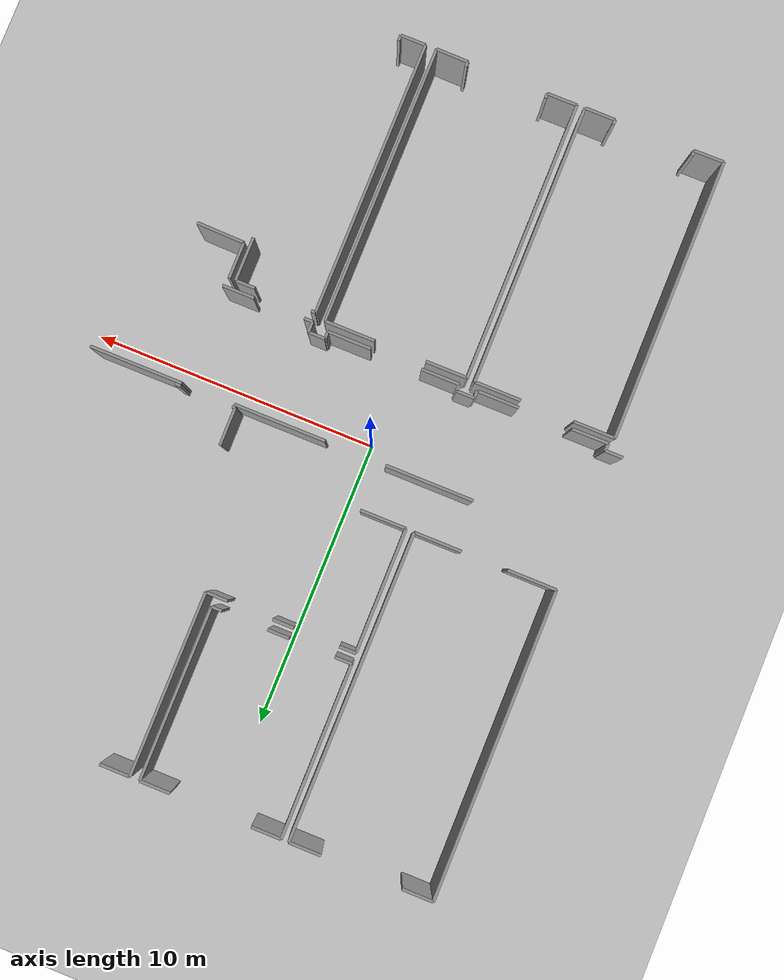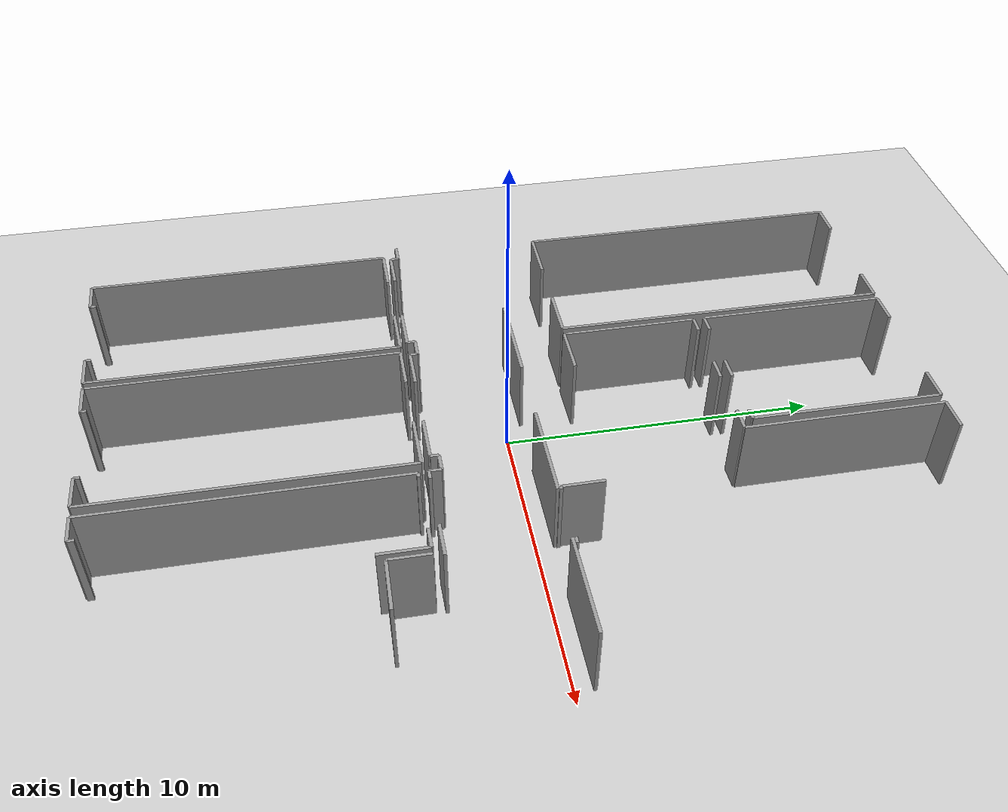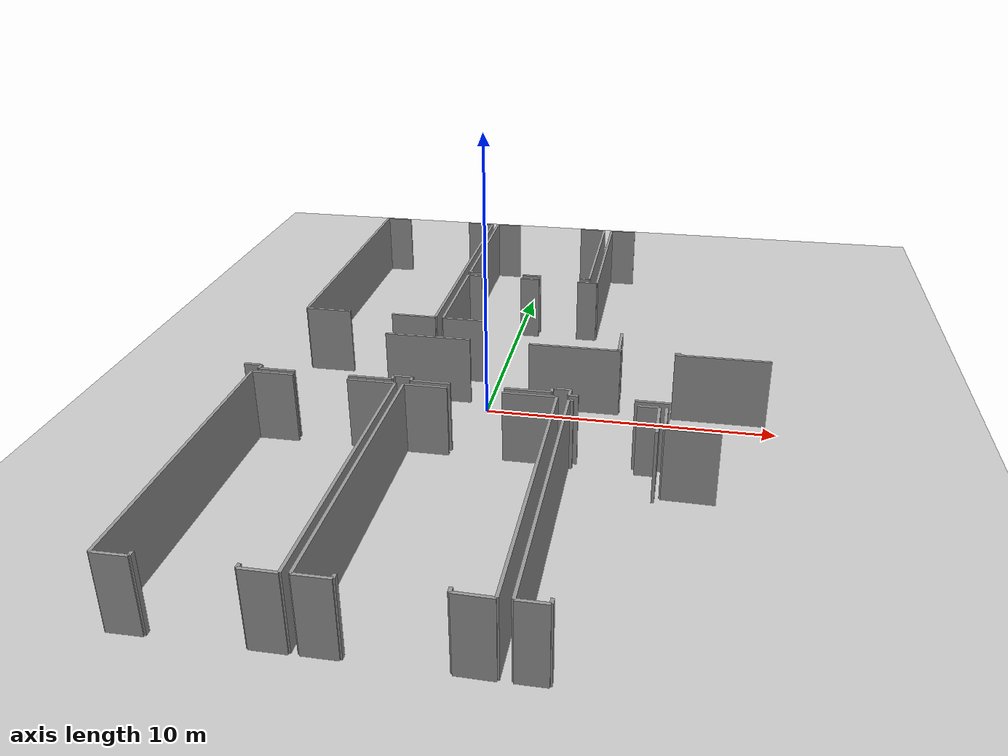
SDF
<sdf version="1.6">
 <world name="default">
  <model name="ground_plane">
   <static>1</static>
   <link name="link">
    <collision name="collision">
     <geometry><plane><normal>0 0 1</normal><size>100 100</size></plane></geometry>
     <surface><friction><ode><mu>100</mu><mu2>50</mu2></ode></friction></surface>
    </collision>
    <visual name="visual">
     <cast_shadows>0</cast_shadows>
     <geometry><plane><normal>0 0 1</normal><size>100 100</size></plane></geometry>
     <material>
      <script><uri>file://media/materials/scripts/gazebo.material</uri><name>Gazebo/Grey</name></script>
     </material>
    </visual>
   </link>
  </model>
  <model name="0510030966_A-40">
   <static>1</static>
   <link name="Wall_41">
    <collision name="Wall_41_Collision">
     <geometry><box><size>3.06491560083 0.1 2.5</size></box></geometry>
     <pose>1.53245780041 0 1.25 0 0 0</pose>
    </collision>
    <visual name="Wall_41_Visual">
     <pose>1.53245780041 0 1.25 0 0 0</pose>
     <geometry><box><size>3.06491560083 0.1 2.5</size></box></geometry>
     <material>
      <script><uri>file://media/materials/scripts/gazebo.material</uri><name>Gazebo/Grey</name></script>
      <ambient>1 1 1 1</ambient>
     </material>
    </visual>
    <pose>35.1628923069 -12.2985279362 0 0 0 0.0</pose>
   </link>
   <link name="Wall_42">
    <collision name="Wall_42_Collision">
     <geometry><box><size>3.18849783445 0.1 2.5</size></box></geometry>
     <pose>1.59424891723 0 1.25 0 0 0</pose>
    </collision>
    <visual name="Wall_42_Visual">
     <pose>1.59424891723 0 1.25 0 0 0</pose>
     <geometry><box><size>3.18849783445 0.1 2.5</size></box></geometry>
     <material>
      <script><uri>file://media/materials/scripts/gazebo.material</uri><name>Gazebo/Grey</name></script>
      <ambient>1 1 1 1</ambient>
     </material>
    </visual>
    <pose>40.336072549 -12.2985279362 0 0 0 0.0</pose>
   </link>
   <link name="Wall_43">
    <collision name="Wall_43_Collision">
     <geometry><box><size>3.23396796769 0.1 2.5</size></box></geometry>
     <pose>1.61698398384 0 1.25 0 0 0</pose>
    </collision>
    <visual name="Wall_43_Visual">
     <pose>1.61698398384 0 1.25 0 0 0</pose>
     <geometry><box><size>3.23396796769 0.1 2.5</size></box></geometry>
     <material>
      <script><uri>file://media/materials/scripts/gazebo.material</uri><name>Gazebo/Grey</name></script>
      <ambient>1 1 1 1</ambient>
     </material>
    </visual>
    <pose>45.3710642297 -12.2985279362 0 0 0 0.0</pose>
   </link>
   <link name="Wall_58">
    <collision name="Wall_58_Collision">
     <geometry><box><size>1.11401826426 0.1 2.5</size></box></geometry>
     <pose>0.55700913213 0 1.25 0 0 0</pose>
    </collision>
    <visual name="Wall_58_Visual">
     <pose>0.55700913213 0 1.25 0 0 0</pose>
     <geometry><box><size>1.11401826426 0.1 2.5</size></box></geometry>
     <material>
      <script><uri>file://media/materials/scripts/gazebo.material</uri><name>Gazebo/Grey</name></script>
      <ambient>1 1 1 1</ambient>
     </material>
    </visual>
    <pose>45.3685239988 -15.7622597894 0 0 0 3.14159265359</pose>
   </link>
   <link name="Wall_59">
    <collision name="Wall_59_Collision">
     <geometry><box><size>0.298223108481 0.1 2.5</size></box></geometry>
     <pose>0.14911155424 0 1.25 0 0 0</pose>
    </collision>
    <visual name="Wall_59_Visual">
     <pose>0.14911155424 0 1.25 0 0 0</pose>
     <geometry><box><size>0.298223108481 0.1 2.5</size></box></geometry>
     <material>
      <script><uri>file://media/materials/scripts/gazebo.material</uri><name>Gazebo/Grey</name></script>
      <ambient>1 1 1 1</ambient>
     </material>
    </visual>
    <pose>42.4898073235 -15.7622597894 0 0 0 3.14159265359</pose>
   </link>
   <link name="Wall_60">
    <collision name="Wall_60_Collision">
     <geometry><box><size>0.370111643148 0.1 2.5</size></box></geometry>
     <pose>0.185055821574 0 1.25 0 0 0</pose>
    </collision>
    <visual name="Wall_60_Visual">
     <pose>0.185055821574 0 1.25 0 0 0</pose>
     <geometry><box><size>0.370111643148 0.1 2.5</size></box></geometry>
     <material>
      <script><uri>file://media/materials/scripts/gazebo.material</uri><name>Gazebo/Grey</name></script>
      <ambient>1 1 1 1</ambient>
     </material>
    </visual>
    <pose>42.191584215 -15.7622597894 0 0 0 1.57079632679</pose>
   </link>
   <link name="Wall_61">
    <collision name="Wall_61_Collision">
     <geometry><box><size>0.585396212516 0.1 2.5</size></box></geometry>
     <pose>0.292698106258 0 1.25 0 0 0</pose>
    </collision>
    <visual name="Wall_61_Visual">
     <pose>0.292698106258 0 1.25 0 0 0</pose>
     <geometry><box><size>0.585396212516 0.1 2.5</size></box></geometry>
     <material>
      <script><uri>file://media/materials/scripts/gazebo.material</uri><name>Gazebo/Grey</name></script>
      <ambient>1 1 1 1</ambient>
     </material>
    </visual>
    <pose>42.191584215 -15.3921481463 0 0 0 3.14159265359</pose>
   </link>
   <link name="Wall_62">
    <collision name="Wall_62_Collision">
     <geometry><box><size>0.254023090699 0.1 2.5</size></box></geometry>
     <pose>0.127011545349 0 1.25 0 0 0</pose>
    </collision>
    <visual name="Wall_62_Visual">
     <pose>0.127011545349 0 1.25 0 0 0</pose>
     <geometry><box><size>0.254023090699 0.1 2.5</size></box></geometry>
     <material>
      <script><uri>file://media/materials/scripts/gazebo.material</uri><name>Gazebo/Grey</name></script>
      <ambient>1 1 1 1</ambient>
     </material>
    </visual>
    <pose>41.6061880025 -15.3921481463 0 0 0 -1.57079632679</pose>
   </link>
   <link name="Wall_63">
    <collision name="Wall_63_Collision">
     <geometry><box><size>1.51308853975 0.1 2.5</size></box></geometry>
     <pose>0.756544269874 0 1.25 0 0 0</pose>
    </collision>
    <visual name="Wall_63_Visual">
     <pose>0.756544269874 0 1.25 0 0 0</pose>
     <geometry><box><size>1.51308853975 0.1 2.5</size></box></geometry>
     <material>
      <script><uri>file://media/materials/scripts/gazebo.material</uri><name>Gazebo/Grey</name></script>
      <ambient>1 1 1 1</ambient>
     </material>
    </visual>
    <pose>41.6061880025 -15.646171237 0 0 0 3.14159265359</pose>
   </link>
   <link name="Wall_64">
    <collision name="Wall_64_Collision">
     <geometry><box><size>1.32092007163 0.1 2.5</size></box></geometry>
     <pose>0.660460035817 0 1.25 0 0 0</pose>
    </collision>
    <visual name="Wall_64_Visual">
     <pose>0.660460035817 0 1.25 0 0 0</pose>
     <geometry><box><size>1.32092007163 0.1 2.5</size></box></geometry>
     <material>
      <script><uri>file://media/materials/scripts/gazebo.material</uri><name>Gazebo/Grey</name></script>
      <ambient>1 1 1 1</ambient>
     </material>
    </visual>
    <pose>38.3193832319 -15.646171237 0 0 0 3.14159265359</pose>
   </link>
   <link name="Wall_65">
    <collision name="Wall_65_Collision">
     <geometry><box><size>0.235860439714 0.1 2.5</size></box></geometry>
     <pose>0.117930219857 0 1.25 0 0 0</pose>
    </collision>
    <visual name="Wall_65_Visual">
     <pose>0.117930219857 0 1.25 0 0 0</pose>
     <geometry><box><size>0.235860439714 0.1 2.5</size></box></geometry>
     <material>
      <script><uri>file://media/materials/scripts/gazebo.material</uri><name>Gazebo/Grey</name></script>
      <ambient>1 1 1 1</ambient>
     </material>
    </visual>
    <pose>36.9984631603 -15.646171237 0 0 0 1.57079632679</pose>
   </link>
   <link name="Wall_66">
    <collision name="Wall_66_Collision">
     <geometry><box><size>0.622356572212 0.1 2.5</size></box></geometry>
     <pose>0.311178286106 0 1.25 0 0 0</pose>
    </collision>
    <visual name="Wall_66_Visual">
     <pose>0.311178286106 0 1.25 0 0 0</pose>
     <geometry><box><size>0.622356572212 0.1 2.5</size></box></geometry>
     <material>
      <script><uri>file://media/materials/scripts/gazebo.material</uri><name>Gazebo/Grey</name></script>
      <ambient>1 1 1 1</ambient>
     </material>
    </visual>
    <pose>36.9984631603 -15.4103107973 0 0 0 3.14159265359</pose>
   </link>
   <link name="Wall_67">
    <collision name="Wall_67_Collision">
     <geometry><box><size>0.254023090699 0.1 2.5</size></box></geometry>
     <pose>0.127011545349 0 1.25 0 0 0</pose>
    </collision>
    <visual name="Wall_67_Visual">
     <pose>0.127011545349 0 1.25 0 0 0</pose>
     <geometry><box><size>0.254023090699 0.1 2.5</size></box></geometry>
     <material>
      <script><uri>file://media/materials/scripts/gazebo.material</uri><name>Gazebo/Grey</name></script>
      <ambient>1 1 1 1</ambient>
     </material>
    </visual>
    <pose>36.3761065881 -15.4103107973 0 0 0 -1.57079632679</pose>
   </link>
   <link name="Wall_68">
    <collision name="Wall_68_Collision">
     <geometry><box><size>1.45809254061 0.1 2.5</size></box></geometry>
     <pose>0.729046270306 0 1.25 0 0 0</pose>
    </collision>
    <visual name="Wall_68_Visual">
     <pose>0.729046270306 0 1.25 0 0 0</pose>
     <geometry><box><size>1.45809254061 0.1 2.5</size></box></geometry>
     <material>
      <script><uri>file://media/materials/scripts/gazebo.material</uri><name>Gazebo/Grey</name></script>
      <ambient>1 1 1 1</ambient>
     </material>
    </visual>
    <pose>36.3761065881 -15.664333888 0 0 0 3.14159265359</pose>
   </link>
   <link name="Wall_69">
    <collision name="Wall_69_Collision">
     <geometry><box><size>1.25741429896 0.1 2.5</size></box></geometry>
     <pose>0.62870714948 0 1.25 0 0 0</pose>
    </collision>
    <visual name="Wall_69_Visual">
     <pose>0.62870714948 0 1.25 0 0 0</pose>
     <geometry><box><size>1.25741429896 0.1 2.5</size></box></geometry>
     <material>
      <script><uri>file://media/materials/scripts/gazebo.material</uri><name>Gazebo/Grey</name></script>
      <ambient>1 1 1 1</ambient>
     </material>
    </visual>
    <pose>33.0611052545 -15.664333888 0 0 0 3.14159265359</pose>
   </link>
   <link name="Wall_70">
    <collision name="Wall_70_Collision">
     <geometry><box><size>0.254023090699 0.1 2.5</size></box></geometry>
     <pose>0.127011545349 0 1.25 0 0 0</pose>
    </collision>
    <visual name="Wall_70_Visual">
     <pose>0.127011545349 0 1.25 0 0 0</pose>
     <geometry><box><size>0.254023090699 0.1 2.5</size></box></geometry>
     <material>
      <script><uri>file://media/materials/scripts/gazebo.material</uri><name>Gazebo/Grey</name></script>
      <ambient>1 1 1 1</ambient>
     </material>
    </visual>
    <pose>31.8036909555 -15.664333888 0 0 0 1.57079632679</pose>
   </link>
   <link name="Wall_71">
    <collision name="Wall_71_Collision">
     <geometry><box><size>0.609655417677 0.1 2.5</size></box></geometry>
     <pose>0.304827708839 0 1.25 0 0 0</pose>
    </collision>
    <visual name="Wall_71_Visual">
     <pose>0.304827708839 0 1.25 0 0 0</pose>
     <geometry><box><size>0.609655417677 0.1 2.5</size></box></geometry>
     <material>
      <script><uri>file://media/materials/scripts/gazebo.material</uri><name>Gazebo/Grey</name></script>
      <ambient>1 1 1 1</ambient>
     </material>
    </visual>
    <pose>31.8036909555 -15.4103107973 0 0 0 3.14159265359</pose>
   </link>
   <link name="Wall_143">
    <collision name="Wall_143_Collision">
     <geometry><box><size>9.81545222461 0.1 2.5</size></box></geometry>
     <pose>4.9077261123 0 1.25 0 0 0</pose>
    </collision>
    <visual name="Wall_143_Visual">
     <pose>4.9077261123 0 1.25 0 0 0</pose>
     <geometry><box><size>9.81545222461 0.1 2.5</size></box></geometry>
     <material>
      <script><uri>file://media/materials/scripts/gazebo.material</uri><name>Gazebo/Grey</name></script>
      <ambient>1 1 1 1</ambient>
     </material>
    </visual>
    <pose>31.6601679093 -25.7217431064 0 0 0 1.57079632679</pose>
   </link>
   <link name="Wall_144">
    <collision name="Wall_144_Collision">
     <geometry><box><size>1.43142011609 0.1 2.5</size></box></geometry>
     <pose>0.715710058044 0 1.25 0 0 0</pose>
    </collision>
    <visual name="Wall_144_Visual">
     <pose>0.715710058044 0 1.25 0 0 0</pose>
     <geometry><box><size>1.43142011609 0.1 2.5</size></box></geometry>
     <material>
      <script><uri>file://media/materials/scripts/gazebo.material</uri><name>Gazebo/Grey</name></script>
      <ambient>1 1 1 1</ambient>
     </material>
    </visual>
    <pose>31.6601679093 -15.9062908818 0 0 0 0.0</pose>
   </link>
   <link name="Wall_145">
    <collision name="Wall_145_Collision">
     <geometry><box><size>1.61253857976 0.1 2.5</size></box></geometry>
     <pose>0.806269289878 0 1.25 0 0 0</pose>
    </collision>
    <visual name="Wall_145_Visual">
     <pose>0.806269289878 0 1.25 0 0 0</pose>
     <geometry><box><size>1.61253857976 0.1 2.5</size></box></geometry>
     <material>
      <script><uri>file://media/materials/scripts/gazebo.material</uri><name>Gazebo/Grey</name></script>
      <ambient>1 1 1 1</ambient>
     </material>
    </visual>
    <pose>34.9463376221 -15.9062908818 0 0 0 0.0</pose>
   </link>
   <link name="Wall_146">
    <collision name="Wall_146_Collision">
     <geometry><box><size>9.79195508872 0.1 2.5</size></box></geometry>
     <pose>4.89597754436 0 1.25 0 0 0</pose>
    </collision>
    <visual name="Wall_146_Visual">
     <pose>4.89597754436 0 1.25 0 0 0</pose>
     <geometry><box><size>9.79195508872 0.1 2.5</size></box></geometry>
     <material>
      <script><uri>file://media/materials/scripts/gazebo.material</uri><name>Gazebo/Grey</name></script>
      <ambient>1 1 1 1</ambient>
     </material>
    </visual>
    <pose>36.5588762018 -15.9062908818 0 0 0 -1.57079632679</pose>
   </link>
   <link name="Wall_147">
    <collision name="Wall_147_Collision">
     <geometry><box><size>1.07019928111 0.1 2.5</size></box></geometry>
     <pose>0.535099640557 0 1.25 0 0 0</pose>
    </collision>
    <visual name="Wall_147_Visual">
     <pose>0.535099640557 0 1.25 0 0 0</pose>
     <geometry><box><size>1.07019928111 0.1 2.5</size></box></geometry>
     <material>
      <script><uri>file://media/materials/scripts/gazebo.material</uri><name>Gazebo/Grey</name></script>
      <ambient>1 1 1 1</ambient>
     </material>
    </visual>
    <pose>36.5588762018 -25.6982459706 0 0 0 3.14159265359</pose>
   </link>
   <link name="Wall_148">
    <collision name="Wall_148_Collision">
     <geometry><box><size>0.171211563131 0.1 2.5</size></box></geometry>
     <pose>0.0856057815655 0 1.25 0 0 0</pose>
    </collision>
    <visual name="Wall_148_Visual">
     <pose>0.0856057815655 0 1.25 0 0 0</pose>
     <geometry><box><size>0.171211563131 0.1 2.5</size></box></geometry>
     <material>
      <script><uri>file://media/materials/scripts/gazebo.material</uri><name>Gazebo/Grey</name></script>
      <ambient>1 1 1 1</ambient>
     </material>
    </visual>
    <pose>35.4886769207 -25.6982459706 0 0 0 1.57079632679</pose>
   </link>
   <link name="Wall_149">
    <collision name="Wall_149_Collision">
     <geometry><box><size>0.183658694575 0.1 2.5</size></box></geometry>
     <pose>0.0918293472877 0 1.25 0 0 0</pose>
    </collision>
    <visual name="Wall_149_Visual">
     <pose>0.0918293472877 0 1.25 0 0 0</pose>
     <geometry><box><size>0.183658694575 0.1 2.5</size></box></geometry>
     <material>
      <script><uri>file://media/materials/scripts/gazebo.material</uri><name>Gazebo/Grey</name></script>
      <ambient>1 1 1 1</ambient>
     </material>
    </visual>
    <pose>32.7076321238 -25.5270344074 0 0 0 -1.57079632679</pose>
   </link>
   <link name="Wall_150">
    <collision name="Wall_150_Collision">
     <geometry><box><size>1.04752249773 0.1 2.5</size></box></geometry>
     <pose>0.523761248865 0 1.25 0 0 0</pose>
    </collision>
    <visual name="Wall_150_Visual">
     <pose>0.523761248865 0 1.25 0 0 0</pose>
     <geometry><box><size>1.04752249773 0.1 2.5</size></box></geometry>
     <material>
      <script><uri>file://media/materials/scripts/gazebo.material</uri><name>Gazebo/Grey</name></script>
      <ambient>1 1 1 1</ambient>
     </material>
    </visual>
    <pose>32.7076321238 -25.710693102 0 0 0 -3.13104375425</pose>
   </link>
   <link name="Wall_151">
    <collision name="Wall_151_Collision">
     <geometry><box><size>9.77391944928 0.1 2.5</size></box></geometry>
     <pose>4.88695972464 0 1.25 0 0 0</pose>
    </collision>
    <visual name="Wall_151_Visual">
     <pose>4.88695972464 0 1.25 0 0 0</pose>
     <geometry><box><size>9.77391944928 0.1 2.5</size></box></geometry>
     <material>
      <script><uri>file://media/materials/scripts/gazebo.material</uri><name>Gazebo/Grey</name></script>
      <ambient>1 1 1 1</ambient>
     </material>
    </visual>
    <pose>41.826171999 -25.7071367787 0 0 0 1.57079632679</pose>
   </link>
   <link name="Wall_152">
    <collision name="Wall_152_Collision">
     <geometry><box><size>1.75517254518 0.1 2.5</size></box></geometry>
     <pose>0.877586272592 0 1.25 0 0 0</pose>
    </collision>
    <visual name="Wall_152_Visual">
     <pose>0.877586272592 0 1.25 0 0 0</pose>
     <geometry><box><size>1.75517254518 0.1 2.5</size></box></geometry>
     <material>
      <script><uri>file://media/materials/scripts/gazebo.material</uri><name>Gazebo/Grey</name></script>
      <ambient>1 1 1 1</ambient>
     </material>
    </visual>
    <pose>41.826171999 -15.9332173295 0 0 0 3.14159265359</pose>
   </link>
   <link name="Wall_153">
    <collision name="Wall_153_Collision">
     <geometry><box><size>1.44793161698 0.1 2.5</size></box></geometry>
     <pose>0.723965808492 0 1.25 0 0 0</pose>
    </collision>
    <visual name="Wall_153_Visual">
     <pose>0.723965808492 0 1.25 0 0 0</pose>
     <geometry><box><size>1.44793161698 0.1 2.5</size></box></geometry>
     <material>
      <script><uri>file://media/materials/scripts/gazebo.material</uri><name>Gazebo/Grey</name></script>
      <ambient>1 1 1 1</ambient>
     </material>
    </visual>
    <pose>38.2812797683 -15.9332173295 0 0 0 3.14159265359</pose>
   </link>
   <link name="Wall_154">
    <collision name="Wall_154_Collision">
     <geometry><box><size>9.74991426721 0.1 2.5</size></box></geometry>
     <pose>4.8749571336 0 1.25 0 0 0</pose>
    </collision>
    <visual name="Wall_154_Visual">
     <pose>4.8749571336 0 1.25 0 0 0</pose>
     <geometry><box><size>9.74991426721 0.1 2.5</size></box></geometry>
     <material>
      <script><uri>file://media/materials/scripts/gazebo.material</uri><name>Gazebo/Grey</name></script>
      <ambient>1 1 1 1</ambient>
     </material>
    </visual>
    <pose>36.8333481513 -15.9332173295 0 0 0 -1.57079632679</pose>
   </link>
   <link name="Wall_155">
    <collision name="Wall_155_Collision">
     <geometry><box><size>1.05381479176 0.1 2.5</size></box></geometry>
     <pose>0.526907395882 0 1.25 0 0 0</pose>
    </collision>
    <visual name="Wall_155_Visual">
     <pose>0.526907395882 0 1.25 0 0 0</pose>
     <geometry><box><size>1.05381479176 0.1 2.5</size></box></geometry>
     <material>
      <script><uri>file://media/materials/scripts/gazebo.material</uri><name>Gazebo/Grey</name></script>
      <ambient>1 1 1 1</ambient>
     </material>
    </visual>
    <pose>36.8333481513 -25.6831315967 0 0 0 0.0</pose>
   </link>
   <link name="Wall_156">
    <collision name="Wall_156_Collision">
     <geometry><box><size>0.172862713221 0.1 2.5</size></box></geometry>
     <pose>0.0864313566103 0 1.25 0 0 0</pose>
    </collision>
    <visual name="Wall_156_Visual">
     <pose>0.0864313566103 0 1.25 0 0 0</pose>
     <geometry><box><size>0.172862713221 0.1 2.5</size></box></geometry>
     <material>
      <script><uri>file://media/materials/scripts/gazebo.material</uri><name>Gazebo/Grey</name></script>
      <ambient>1 1 1 1</ambient>
     </material>
    </visual>
    <pose>37.8871629431 -25.6831315967 0 0 0 1.57079632679</pose>
   </link>
   <link name="Wall_157">
    <collision name="Wall_157_Collision">
     <geometry><box><size>0.180102371306 0.1 2.5</size></box></geometry>
     <pose>0.0900511856528 0 1.25 0 0 0</pose>
    </collision>
    <visual name="Wall_157_Visual">
     <pose>0.0900511856528 0 1.25 0 0 0</pose>
     <geometry><box><size>0.180102371306 0.1 2.5</size></box></geometry>
     <material>
      <script><uri>file://media/materials/scripts/gazebo.material</uri><name>Gazebo/Grey</name></script>
      <ambient>1 1 1 1</ambient>
     </material>
    </visual>
    <pose>40.7088514346 -25.5102688834 0 0 0 -1.57079632679</pose>
   </link>
   <link name="Wall_158">
    <collision name="Wall_158_Collision">
     <geometry><box><size>1.11744634167 0.1 2.5</size></box></geometry>
     <pose>0.558723170835 0 1.25 0 0 0</pose>
    </collision>
    <visual name="Wall_158_Visual">
     <pose>0.558723170835 0 1.25 0 0 0</pose>
     <geometry><box><size>1.11744634167 0.1 2.5</size></box></geometry>
     <material>
      <script><uri>file://media/materials/scripts/gazebo.material</uri><name>Gazebo/Grey</name></script>
      <ambient>1 1 1 1</ambient>
     </material>
    </visual>
    <pose>40.7088514346 -25.6903712547 0 0 0 -0.015003989381</pose>
   </link>
   <link name="Wall_161">
    <collision name="Wall_161_Collision">
     <geometry><box><size>1.51766095538 0.1 2.5</size></box></geometry>
     <pose>0.75883047769 0 1.25 0 0 0</pose>
    </collision>
    <visual name="Wall_161_Visual">
     <pose>0.75883047769 0 1.25 0 0 0</pose>
     <geometry><box><size>1.51766095538 0.1 2.5</size></box></geometry>
     <material>
      <script><uri>file://media/materials/scripts/gazebo.material</uri><name>Gazebo/Grey</name></script>
      <ambient>1 1 1 1</ambient>
     </material>
    </visual>
    <pose>45.0370238655 -17.5932582272 0 0 0 1.57079632679</pose>
   </link>
   <link name="Wall_162">
    <collision name="Wall_162_Collision">
     <geometry><box><size>0.682687056253 0.1 2.5</size></box></geometry>
     <pose>0.341343528127 0 1.25 0 0 0</pose>
    </collision>
    <visual name="Wall_162_Visual">
     <pose>0.341343528127 0 1.25 0 0 0</pose>
     <geometry><box><size>0.682687056253 0.1 2.5</size></box></geometry>
     <material>
      <script><uri>file://media/materials/scripts/gazebo.material</uri><name>Gazebo/Grey</name></script>
      <ambient>1 1 1 1</ambient>
     </material>
    </visual>
    <pose>45.0370238655 -16.0755972718 0 0 0 3.14159265359</pose>
   </link>
   <link name="Wall_163">
    <collision name="Wall_163_Collision">
     <geometry><box><size>0.153683969873 0.1 2.5</size></box></geometry>
     <pose>0.0768419849364 0 1.25 0 0 0</pose>
    </collision>
    <visual name="Wall_163_Visual">
     <pose>0.0768419849364 0 1.25 0 0 0</pose>
     <geometry><box><size>0.153683969873 0.1 2.5</size></box></geometry>
     <material>
      <script><uri>file://media/materials/scripts/gazebo.material</uri><name>Gazebo/Grey</name></script>
      <ambient>1 1 1 1</ambient>
     </material>
    </visual>
    <pose>42.3721946325 -16.0755972718 0 0 0 3.14159265359</pose>
   </link>
   <link name="Wall_164">
    <collision name="Wall_164_Collision">
     <geometry><box><size>9.61845731777 0.1 2.5</size></box></geometry>
     <pose>4.80922865889 0 1.25 0 0 0</pose>
    </collision>
    <visual name="Wall_164_Visual">
     <pose>4.80922865889 0 1.25 0 0 0</pose>
     <geometry><box><size>9.61845731777 0.1 2.5</size></box></geometry>
     <material>
      <script><uri>file://media/materials/scripts/gazebo.material</uri><name>Gazebo/Grey</name></script>
      <ambient>1 1 1 1</ambient>
     </material>
    </visual>
    <pose>42.2185106626 -16.0755972718 0 0 0 -1.57079632679</pose>
   </link>
   <link name="Wall_165">
    <collision name="Wall_165_Collision">
     <geometry><box><size>0.878030813001 0.1 2.5</size></box></geometry>
     <pose>0.4390154065 0 1.25 0 0 0</pose>
    </collision>
    <visual name="Wall_165_Visual">
     <pose>0.4390154065 0 1.25 0 0 0</pose>
     <geometry><box><size>0.878030813001 0.1 2.5</size></box></geometry>
     <material>
      <script><uri>file://media/materials/scripts/gazebo.material</uri><name>Gazebo/Grey</name></script>
      <ambient>1 1 1 1</ambient>
     </material>
    </visual>
    <pose>42.2185106626 -25.6940545896 0 0 0 0.0</pose>
   </link>
   <link name="Wall_166">
    <collision name="Wall_166_Collision">
     <geometry><box><size>0.200424218561 0.1 2.5</size></box></geometry>
     <pose>0.100212109281 0 1.25 0 0 0</pose>
    </collision>
    <visual name="Wall_166_Visual">
     <pose>0.100212109281 0 1.25 0 0 0</pose>
     <geometry><box><size>0.200424218561 0.1 2.5</size></box></geometry>
     <material>
      <script><uri>file://media/materials/scripts/gazebo.material</uri><name>Gazebo/Grey</name></script>
      <ambient>1 1 1 1</ambient>
     </material>
    </visual>
    <pose>43.0965414756 -25.6940545896 0 0 0 1.57079632679</pose>
   </link>
   <link name="Wall_191">
    <collision name="Wall_191_Collision">
     <geometry><box><size>1.27176660358 0.1 2.5</size></box></geometry>
     <pose>0.635883301792 0 1.25 0 0 0</pose>
    </collision>
    <visual name="Wall_191_Visual">
     <pose>0.635883301792 0 1.25 0 0 0</pose>
     <geometry><box><size>1.27176660358 0.1 2.5</size></box></geometry>
     <material>
      <script><uri>file://media/materials/scripts/gazebo.material</uri><name>Gazebo/Grey</name></script>
      <ambient>1 1 1 1</ambient>
     </material>
    </visual>
    <pose>45.2628503931 -16.0611179556 0 0 0 -1.57079632679</pose>
   </link>
   <link name="Wall_192">
    <collision name="Wall_192_Collision">
     <geometry><box><size>1.67717814085 0.1 2.5</size></box></geometry>
     <pose>0.838589070426 0 1.25 0 0 0</pose>
    </collision>
    <visual name="Wall_192_Visual">
     <pose>0.838589070426 0 1.25 0 0 0</pose>
     <geometry><box><size>1.67717814085 0.1 2.5</size></box></geometry>
     <material>
      <script><uri>file://media/materials/scripts/gazebo.material</uri><name>Gazebo/Grey</name></script>
      <ambient>1 1 1 1</ambient>
     </material>
    </visual>
    <pose>45.2628503931 -17.3328845592 0 0 0 -0.0210543039813</pose>
   </link>
   <link name="Wall_274">
    <collision name="Wall_274_Collision">
     <geometry><box><size>0.10732475582 0.1 2.5</size></box></geometry>
     <pose>0.0536623779102 0 1.25 0 0 0</pose>
    </collision>
    <visual name="Wall_274_Visual">
     <pose>0.0536623779102 0 1.25 0 0 0</pose>
     <geometry><box><size>0.10732475582 0.1 2.5</size></box></geometry>
     <material>
      <script><uri>file://media/materials/scripts/gazebo.material</uri><name>Gazebo/Grey</name></script>
      <ambient>1 1 1 1</ambient>
     </material>
    </visual>
    <pose>43.4554761028 -12.2053014619 0 0 0 0.0</pose>
   </link>
   <link name="Wall_275">
    <collision name="Wall_275_Collision">
     <geometry><box><size>0.201694334015 0.1 2.5</size></box></geometry>
     <pose>0.100847167007 0 1.25 0 0 0</pose>
    </collision>
    <visual name="Wall_275_Visual">
     <pose>0.100847167007 0 1.25 0 0 0</pose>
     <geometry><box><size>0.201694334015 0.1 2.5</size></box></geometry>
     <material>
      <script><uri>file://media/materials/scripts/gazebo.material</uri><name>Gazebo/Grey</name></script>
      <ambient>1 1 1 1</ambient>
     </material>
    </visual>
    <pose>45.3685239988 -12.2053014619 0 0 0 0.0</pose>
   </link>
   <link name="Wall_278">
    <collision name="Wall_278_Collision">
     <geometry><box><size>1.31217914819 0.1 2.5</size></box></geometry>
     <pose>0.656089574097 0 1.25 0 0 0</pose>
    </collision>
    <visual name="Wall_278_Visual">
     <pose>0.656089574097 0 1.25 0 0 0</pose>
     <geometry><box><size>1.31217914819 0.1 2.5</size></box></geometry>
     <material>
      <script><uri>file://media/materials/scripts/gazebo.material</uri><name>Gazebo/Grey</name></script>
      <ambient>1 1 1 1</ambient>
     </material>
    </visual>
    <pose>43.4477283985 -10.8931451869 0 0 0 -1.56489183632</pose>
   </link>
   <link name="Wall_280">
    <collision name="Wall_280_Collision">
     <geometry><box><size>1.59208972096 0.1 2.5</size></box></geometry>
     <pose>0.796044860478 0 1.25 0 0 0</pose>
    </collision>
    <visual name="Wall_280_Visual">
     <pose>0.796044860478 0 1.25 0 0 0</pose>
     <geometry><box><size>1.59208972096 0.1 2.5</size></box></geometry>
     <material>
      <script><uri>file://media/materials/scripts/gazebo.material</uri><name>Gazebo/Grey</name></script>
      <ambient>1 1 1 1</ambient>
     </material>
    </visual>
    <pose>38.4375039691 -10.6473778466 0 0 0 3.14159265359</pose>
   </link>
   <link name="Wall_281">
    <collision name="Wall_281_Collision">
     <geometry><box><size>4.31000977989 0.1 2.5</size></box></geometry>
     <pose>2.15500488994 0 1.25 0 0 0</pose>
    </collision>
    <visual name="Wall_281_Visual">
     <pose>2.15500488994 0 1.25 0 0 0</pose>
     <geometry><box><size>4.31000977989 0.1 2.5</size></box></geometry>
     <material>
      <script><uri>file://media/materials/scripts/gazebo.material</uri><name>Gazebo/Grey</name></script>
      <ambient>1 1 1 1</ambient>
     </material>
    </visual>
    <pose>36.8454142482 -10.6473778466 0 0 0 1.57079632679</pose>
   </link>
   <link name="Wall_282">
    <collision name="Wall_282_Collision">
     <geometry><box><size>0.573838161889 0.1 2.5</size></box></geometry>
     <pose>0.286919080944 0 1.25 0 0 0</pose>
    </collision>
    <visual name="Wall_282_Visual">
     <pose>0.286919080944 0 1.25 0 0 0</pose>
     <geometry><box><size>0.573838161889 0.1 2.5</size></box></geometry>
     <material>
      <script><uri>file://media/materials/scripts/gazebo.material</uri><name>Gazebo/Grey</name></script>
      <ambient>1 1 1 1</ambient>
     </material>
    </visual>
    <pose>36.8454142482 -6.33736806676 0 0 0 0.0</pose>
   </link>
   <link name="Wall_283">
    <collision name="Wall_283_Collision">
     <geometry><box><size>0.740731332478 0.1 2.5</size></box></geometry>
     <pose>0.370365666239 0 1.25 0 0 0</pose>
    </collision>
    <visual name="Wall_283_Visual">
     <pose>0.370365666239 0 1.25 0 0 0</pose>
     <geometry><box><size>0.740731332478 0.1 2.5</size></box></geometry>
     <material>
      <script><uri>file://media/materials/scripts/gazebo.material</uri><name>Gazebo/Grey</name></script>
      <ambient>1 1 1 1</ambient>
     </material>
    </visual>
    <pose>38.9950846532 -6.33736806676 0 0 0 0.0</pose>
   </link>
   <link name="Wall_284">
    <collision name="Wall_284_Collision">
     <geometry><box><size>0.764101456822 0.1 2.5</size></box></geometry>
     <pose>0.382050728411 0 1.25 0 0 0</pose>
    </collision>
    <visual name="Wall_284_Visual">
     <pose>0.382050728411 0 1.25 0 0 0</pose>
     <geometry><box><size>0.764101456822 0.1 2.5</size></box></geometry>
     <material>
      <script><uri>file://media/materials/scripts/gazebo.material</uri><name>Gazebo/Grey</name></script>
      <ambient>1 1 1 1</ambient>
     </material>
    </visual>
    <pose>41.2957717857 -6.33736806676 0 0 0 0.0</pose>
   </link>
   <link name="Wall_285">
    <collision name="Wall_285_Collision">
     <geometry><box><size>6.3251749584 0.1 2.5</size></box></geometry>
     <pose>3.1625874792 0 1.25 0 0 0</pose>
    </collision>
    <visual name="Wall_285_Visual">
     <pose>3.1625874792 0 1.25 0 0 0</pose>
     <geometry><box><size>6.3251749584 0.1 2.5</size></box></geometry>
     <material>
      <script><uri>file://media/materials/scripts/gazebo.material</uri><name>Gazebo/Grey</name></script>
      <ambient>1 1 1 1</ambient>
     </material>
    </visual>
    <pose>42.0598732425 -6.33736806676 0 0 0 1.57079632679</pose>
   </link>
   <link name="Wall_286">
    <collision name="Wall_286_Collision">
     <geometry><box><size>1.04543202977 0.1 2.5</size></box></geometry>
     <pose>0.522716014886 0 1.25 0 0 0</pose>
    </collision>
    <visual name="Wall_286_Visual">
     <pose>0.522716014886 0 1.25 0 0 0</pose>
     <geometry><box><size>1.04543202977 0.1 2.5</size></box></geometry>
     <material>
      <script><uri>file://media/materials/scripts/gazebo.material</uri><name>Gazebo/Grey</name></script>
      <ambient>1 1 1 1</ambient>
     </material>
    </visual>
    <pose>42.0598732425 -0.0121931083536 0 0 0 0.0</pose>
   </link>
   <link name="Wall_289">
    <collision name="Wall_289_Collision">
     <geometry><box><size>0.368206469968 0.1 2.5</size></box></geometry>
     <pose>0.184103234984 0 1.25 0 0 0</pose>
    </collision>
    <visual name="Wall_289_Visual">
     <pose>0.184103234984 0 1.25 0 0 0</pose>
     <geometry><box><size>0.368206469968 0.1 2.5</size></box></geometry>
     <material>
      <script><uri>file://media/materials/scripts/gazebo.material</uri><name>Gazebo/Grey</name></script>
      <ambient>1 1 1 1</ambient>
     </material>
    </visual>
    <pose>41.7093213773 -5.97398803551 0 0 0 3.14159265359</pose>
   </link>
   <link name="Wall_290">
    <collision name="Wall_290_Collision">
     <geometry><box><size>0.747970990563 0.1 2.5</size></box></geometry>
     <pose>0.373985495282 0 1.25 0 0 0</pose>
    </collision>
    <visual name="Wall_290_Visual">
     <pose>0.373985495282 0 1.25 0 0 0</pose>
     <geometry><box><size>0.747970990563 0.1 2.5</size></box></geometry>
     <material>
      <script><uri>file://media/materials/scripts/gazebo.material</uri><name>Gazebo/Grey</name></script>
      <ambient>1 1 1 1</ambient>
     </material>
    </visual>
    <pose>39.7575349599 -5.97398803551 0 0 0 3.14159265359</pose>
   </link>
   <link name="Wall_291">
    <collision name="Wall_291_Collision">
     <geometry><box><size>0.588190466513 0.1 2.5</size></box></geometry>
     <pose>0.294095233257 0 1.25 0 0 0</pose>
    </collision>
    <visual name="Wall_291_Visual">
     <pose>0.294095233257 0 1.25 0 0 0</pose>
     <geometry><box><size>0.588190466513 0.1 2.5</size></box></geometry>
     <material>
      <script><uri>file://media/materials/scripts/gazebo.material</uri><name>Gazebo/Grey</name></script>
      <ambient>1 1 1 1</ambient>
     </material>
    </visual>
    <pose>37.4264920681 -5.97398803551 0 0 0 3.14159265359</pose>
   </link>
   <link name="Wall_292">
    <collision name="Wall_292_Collision">
     <geometry><box><size>5.96878056215 0.1 2.5</size></box></geometry>
     <pose>2.98439028108 0 1.25 0 0 0</pose>
    </collision>
    <visual name="Wall_292_Visual">
     <pose>2.98439028108 0 1.25 0 0 0</pose>
     <geometry><box><size>5.96878056215 0.1 2.5</size></box></geometry>
     <material>
      <script><uri>file://media/materials/scripts/gazebo.material</uri><name>Gazebo/Grey</name></script>
      <ambient>1 1 1 1</ambient>
     </material>
    </visual>
    <pose>36.8383016016 -5.97398803551 0 0 0 1.57079632679</pose>
   </link>
   <link name="Wall_293">
    <collision name="Wall_293_Collision">
     <geometry><box><size>1.03489007151 0.1 2.5</size></box></geometry>
     <pose>0.517445035754 0 1.25 0 0 0</pose>
    </collision>
    <visual name="Wall_293_Visual">
     <pose>0.517445035754 0 1.25 0 0 0</pose>
     <geometry><box><size>1.03489007151 0.1 2.5</size></box></geometry>
     <material>
      <script><uri>file://media/materials/scripts/gazebo.material</uri><name>Gazebo/Grey</name></script>
      <ambient>1 1 1 1</ambient>
     </material>
    </visual>
    <pose>36.8383016016 -0.00520747335933 0 0 0 0.0</pose>
   </link>
   <link name="Wall_294">
    <collision name="Wall_294_Collision">
     <geometry><box><size>1.04835329531 0.1 2.5</size></box></geometry>
     <pose>0.524176647657 0 1.25 0 0 0</pose>
    </collision>
    <visual name="Wall_294_Visual">
     <pose>0.524176647657 0 1.25 0 0 0</pose>
     <geometry><box><size>1.04835329531 0.1 2.5</size></box></geometry>
     <material>
      <script><uri>file://media/materials/scripts/gazebo.material</uri><name>Gazebo/Grey</name></script>
      <ambient>1 1 1 1</ambient>
     </material>
    </visual>
    <pose>40.6706209594 -0.00520747335933 0 0 0 0.0</pose>
   </link>
   <link name="Wall_295">
    <collision name="Wall_295_Collision">
     <geometry><box><size>5.9687883676 0.1 2.5</size></box></geometry>
     <pose>2.9843941838 0 1.25 0 0 0</pose>
    </collision>
    <visual name="Wall_295_Visual">
     <pose>2.9843941838 0 1.25 0 0 0</pose>
     <geometry><box><size>5.9687883676 0.1 2.5</size></box></geometry>
     <material>
      <script><uri>file://media/materials/scripts/gazebo.material</uri><name>Gazebo/Grey</name></script>
      <ambient>1 1 1 1</ambient>
     </material>
    </visual>
    <pose>41.7189742548 -0.00520747335933 0 0 0 -1.57241355312</pose>
   </link>
   <link name="Wall_296">
    <collision name="Wall_296_Collision">
     <geometry><box><size>1.644037443 0.1 2.5</size></box></geometry>
     <pose>0.822018721502 0 1.25 0 0 0</pose>
    </collision>
    <visual name="Wall_296_Visual">
     <pose>0.822018721502 0 1.25 0 0 0</pose>
     <geometry><box><size>1.644037443 0.1 2.5</size></box></geometry>
     <material>
      <script><uri>file://media/materials/scripts/gazebo.material</uri><name>Gazebo/Grey</name></script>
      <ambient>1 1 1 1</ambient>
     </material>
    </visual>
    <pose>36.5539227516 -10.6346766921 0 0 0 3.14159265359</pose>
   </link>
   <link name="Wall_297">
    <collision name="Wall_297_Collision">
     <geometry><box><size>1.67858458334 0.1 2.5</size></box></geometry>
     <pose>0.839292291669 0 1.25 0 0 0</pose>
    </collision>
    <visual name="Wall_297_Visual">
     <pose>0.839292291669 0 1.25 0 0 0</pose>
     <geometry><box><size>1.67858458334 0.1 2.5</size></box></geometry>
     <material>
      <script><uri>file://media/materials/scripts/gazebo.material</uri><name>Gazebo/Grey</name></script>
      <ambient>1 1 1 1</ambient>
     </material>
    </visual>
    <pose>33.300649029 -10.6346766921 0 0 0 3.14159265359</pose>
   </link>
   <link name="Wall_298">
    <collision name="Wall_298_Collision">
     <geometry><box><size>10.6289611726 0.1 2.5</size></box></geometry>
     <pose>5.31448058629 0 1.25 0 0 0</pose>
    </collision>
    <visual name="Wall_298_Visual">
     <pose>5.31448058629 0 1.25 0 0 0</pose>
     <geometry><box><size>10.6289611726 0.1 2.5</size></box></geometry>
     <material>
      <script><uri>file://media/materials/scripts/gazebo.material</uri><name>Gazebo/Grey</name></script>
      <ambient>1 1 1 1</ambient>
     </material>
    </visual>
    <pose>31.6220644457 -10.6346766921 0 0 0 1.57079632679</pose>
   </link>
   <link name="Wall_299">
    <collision name="Wall_299_Collision">
     <geometry><box><size>1.07312054666 0.1 2.5</size></box></geometry>
     <pose>0.536560273329 0 1.25 0 0 0</pose>
    </collision>
    <visual name="Wall_299_Visual">
     <pose>0.536560273329 0 1.25 0 0 0</pose>
     <geometry><box><size>1.07312054666 0.1 2.5</size></box></geometry>
     <material>
      <script><uri>file://media/materials/scripts/gazebo.material</uri><name>Gazebo/Grey</name></script>
      <ambient>1 1 1 1</ambient>
     </material>
    </visual>
    <pose>31.6220644457 -0.00571551954073 0 0 0 0.0</pose>
   </link>
   <link name="Wall_300">
    <collision name="Wall_300_Collision">
     <geometry><box><size>1.11135102181 0.1 2.5</size></box></geometry>
     <pose>0.555675510904 0 1.25 0 0 0</pose>
    </collision>
    <visual name="Wall_300_Visual">
     <pose>0.555675510904 0 1.25 0 0 0</pose>
     <geometry><box><size>1.11135102181 0.1 2.5</size></box></geometry>
     <material>
      <script><uri>file://media/materials/scripts/gazebo.material</uri><name>Gazebo/Grey</name></script>
      <ambient>1 1 1 1</ambient>
     </material>
    </visual>
    <pose>35.4673389811 -0.00571551954073 0 0 0 0.0</pose>
   </link>
   <link name="Wall_301">
    <collision name="Wall_301_Collision">
     <geometry><box><size>10.6289900284 0.1 2.5</size></box></geometry>
     <pose>5.31449501422 0 1.25 0 0 0</pose>
    </collision>
    <visual name="Wall_301_Visual">
     <pose>5.31449501422 0 1.25 0 0 0</pose>
     <geometry><box><size>10.6289900284 0.1 2.5</size></box></geometry>
     <material>
      <script><uri>file://media/materials/scripts/gazebo.material</uri><name>Gazebo/Grey</name></script>
      <ambient>1 1 1 1</ambient>
     </material>
    </visual>
    <pose>36.5786900029 -0.00571551954073 0 0 0 -1.57312648927</pose>
   </link>
   <pose>-38.95 12.877458626 0 0 0 0</pose>
  </model>
 </world>
</sdf>
